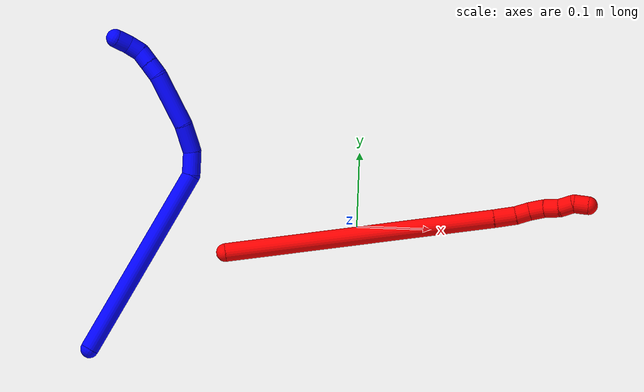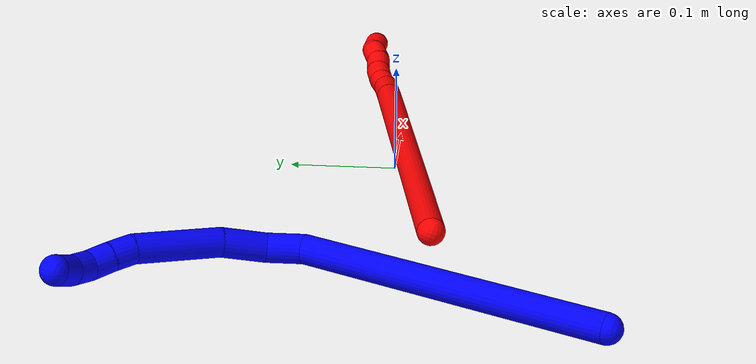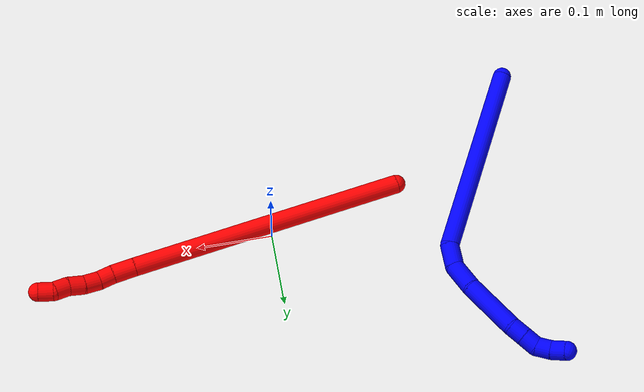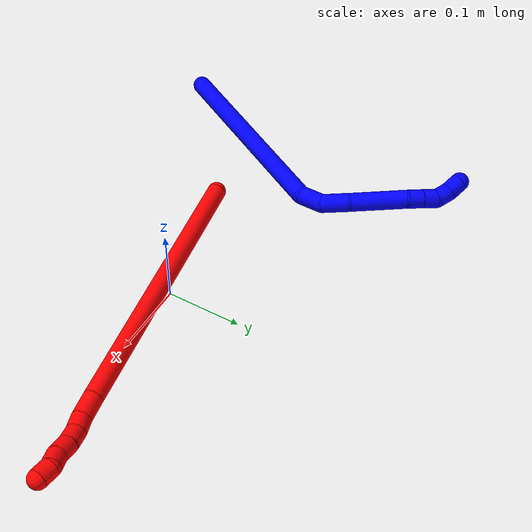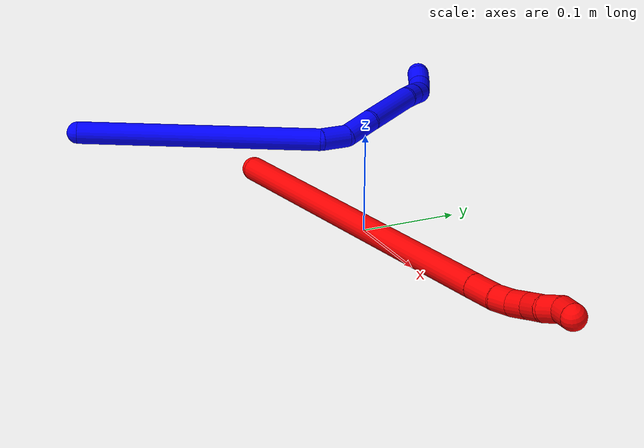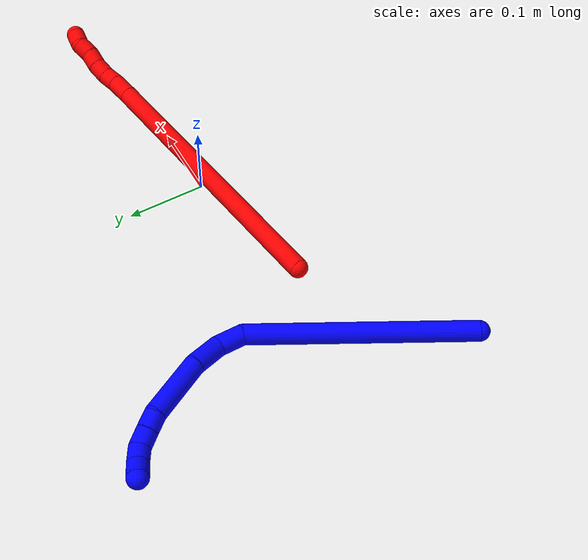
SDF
<sdf version="1.7">
 <world name="default">
  <plugin name="TubeGeneratorPlugin" filename="libtube_generator_plugin.so"/>
  <model name="photoneo_s_sensor">
   <static>1</static>
   <pose>0 0 2 1.57079 1.57079 3.14159</pose>
   <link name="link">
    <inertial><mass>0.1</mass></inertial>
    <sensor name="sensor" type="depth">
     <update_rate>30</update_rate>
     <camera>
      <horizontal_fov>1.22</horizontal_fov>
      <image><width>1920</width><height>1200</height><format>B8G8R8</format></image>
      <clip><near>0.1</near><far>4</far></clip>
      <depth_camera><output>points</output></depth_camera>
     </camera>
     <plugin name="camera_plugin" filename="libgazebo_ros_depth_camera.so">
      <baseline>0.2</baseline>
      <alwaysOn>1</alwaysOn>
      <updateRate>0.0</updateRate>
      <cameraName>camera_ir</cameraName>
      <imageTopicName>/camera/color/image_raw</imageTopicName>
      <cameraInfoTopicName>/camera/color/camera_info</cameraInfoTopicName>
      <depthImageTopicName>/camera/depth/image_raw</depthImageTopicName>
      <depthImageCameraInfoTopicName>/camera/depth/camera_info</depthImageCameraInfoTopicName>
      <pointCloudTopicName>/camera/depth/points</pointCloudTopicName>
      <frameName>fr_optical</frameName>
      <pointCloudCutoff>0.1</pointCloudCutoff>
      <pointCloudCutoffMax>2.0</pointCloudCutoffMax>
      <distortionK1>0</distortionK1>
      <distortionK2>0</distortionK2>
      <distortionK3>0</distortionK3>
      <distortionT1>0</distortionT1>
      <distortionT2>0</distortionT2>
      <CxPrime>0</CxPrime>
      <Cx>0</Cx>
      <Cy>0</Cy>
      <focalLength>0</focalLength>
      <hackBaseline>0</hackBaseline>
     </plugin>
    </sensor>
   </link>
  </model>
  <gravity>0 0 -9.8</gravity>
  <magnetic_field>6e-06 2.3e-05 -4.2e-05</magnetic_field>
  <atmosphere type="adiabatic"/>
  <physics name="default_physics" default="0" type="ode">
   <max_step_size>0.003</max_step_size>
   <real_time_factor>1</real_time_factor>
   <real_time_update_rate>1000</real_time_update_rate>
   <max_contacts>10000</max_contacts>
   <ode>
    <solver>
     <type>quick</type>
     <iters>100</iters>
     <sor>1.3</sor>
     <use_dynamic_moi_rescaling>0</use_dynamic_moi_rescaling>
    </solver>
    <constraints>
     <contact_max_correcting_vel>0</contact_max_correcting_vel>
     <contact_surface_layer>0.001</contact_surface_layer>
     <cfm>0</cfm>
     <erp>0.2</erp>
    </constraints>
   </ode>
  </physics>
  <scene><ambient>0.4 0.4 0.4 1</ambient><background>0.7 0.7 0.7 1</background><shadows>0</shadows></scene>
  <audio><device>default</device></audio>
  <spherical_coordinates>
   <surface_model>EARTH_WGS84</surface_model>
   <latitude_deg>0</latitude_deg>
   <longitude_deg>0</longitude_deg>
   <elevation>0</elevation>
   <heading_deg>0</heading_deg>
  </spherical_coordinates>
  <model name="bin">
   <static>1</static>
   <link name="bottom">
    <collision name="collision-bottom">
     <pose>0 0 -0.01 0 -0 0</pose>
     <geometry><box><size>0.8 0.6 0.02</size></box></geometry>
     <surface>
      <friction><ode><mu>100</mu><mu2>100</mu2></ode></friction>
      <contact><collide_bitmask>65535</collide_bitmask></contact>
     </surface>
    </collision>
   </link>
   <link name="west_wall">
    <collision name="collision-west_wall">
     <pose>-0.41 0 0.1 0 -0 0</pose>
     <geometry><box><size>0.02 0.6 0.2</size></box></geometry>
     <surface>
      <friction><ode><mu>100</mu><mu2>100</mu2></ode></friction>
      <contact><collide_bitmask>65535</collide_bitmask></contact>
     </surface>
    </collision>
   </link>
   <link name="east_wall">
    <collision name="collision-east_wall">
     <pose>0.41 0 0.1 0 -0 0</pose>
     <geometry><box><size>0.02 0.6 0.2</size></box></geometry>
     <surface>
      <friction><ode><mu>100</mu><mu2>100</mu2></ode></friction>
      <contact><collide_bitmask>65535</collide_bitmask></contact>
     </surface>
    </collision>
   </link>
   <link name="south_wall">
    <collision name="collision-south_wall">
     <pose>0 -0.31 0.1 0 -0 0</pose>
     <geometry><box><size>0.8 0.02 0.2</size></box></geometry>
     <surface>
      <friction><ode><mu>100</mu><mu2>100</mu2></ode></friction>
      <contact><collide_bitmask>65535</collide_bitmask></contact>
     </surface>
    </collision>
   </link>
   <link name="north_wall">
    <collision name="collision-north_wall">
     <pose>0 0.31 0.1 0 -0 0</pose>
     <geometry><box><size>0.8 0.02 0.2</size></box></geometry>
     <surface>
      <friction><ode><mu>100</mu><mu2>100</mu2></ode></friction>
      <contact><collide_bitmask>65535</collide_bitmask></contact>
     </surface>
    </collision>
   </link>
  </model>
  <model name="1">
   <static>0</static>
   <link name="1">
    <collision name="collision-cylinder-e_1_1_4">
     <pose>-0.000762 0.001797 0.136503 -0.013166 -0.005584 3.7e-05</pose>
     <geometry><cylinder><radius>0.0125</radius><length>0.273034</length></cylinder></geometry>
     <surface>
      <friction><ode><mu>1.16</mu><mu2>1.16</mu2><slip1>0</slip1><slip2>0</slip2></ode></friction>
      <contact><ode><kp>1e+06</kp><kd>1</kd><max_vel>0</max_vel><min_depth>0.001</min_depth></ode></contact>
     </surface>
    </collision>
    <visual name="visual-cylinder-e_1_1_4">
     <pose>-0.000762 0.001797 0.136503 -0.013166 -0.005584 3.7e-05</pose>
     <geometry><cylinder><radius>0.0125</radius><length>0.273034</length></cylinder></geometry>
     <material><ambient>0 0 1 1</ambient></material>
    </visual>
    <collision name="collision-cylinder-e_2_4_5">
     <pose>0.001505 0.010582 0.287188 -0.45778 0.189341 -0.044236</pose>
     <geometry><cylinder><radius>0.0125</radius><length>0.032195</length></cylinder></geometry>
     <surface>
      <friction><ode><mu>1.16</mu><mu2>1.16</mu2><slip1>0</slip1><slip2>0</slip2></ode></friction>
      <contact><ode><kp>1e+06</kp><kd>1</kd><max_vel>0</max_vel><min_depth>0.001</min_depth></ode></contact>
     </surface>
    </collision>
    <visual name="visual-cylinder-e_2_4_5">
     <pose>0.001505 0.010582 0.287188 -0.45778 0.189341 -0.044236</pose>
     <geometry><cylinder><radius>0.0125</radius><length>0.032195</length></cylinder></geometry>
     <material><ambient>0 0 1 1</ambient></material>
    </visual>
    <collision name="collision-cylinder-e_3_5_6">
     <pose>0.006194 0.032578 0.31391 -0.87477 0.084625 -0.039588</pose>
     <geometry><cylinder><radius>0.0125</radius><length>0.039257</length></cylinder></geometry>
     <surface>
      <friction><ode><mu>1.16</mu><mu2>1.16</mu2><slip1>0</slip1><slip2>0</slip2></ode></friction>
      <contact><ode><kp>1e+06</kp><kd>1</kd><max_vel>0</max_vel><min_depth>0.001</min_depth></ode></contact>
     </surface>
    </collision>
    <visual name="visual-cylinder-e_3_5_6">
     <pose>0.006194 0.032578 0.31391 -0.87477 0.084625 -0.039588</pose>
     <geometry><cylinder><radius>0.0125</radius><length>0.039257</length></cylinder></geometry>
     <material><ambient>0 0 1 1</ambient></material>
    </visual>
    <collision name="collision-cylinder-e_4_6_7">
     <pose>0.017549 0.077987 0.346231 -0.99396 0.26123 -0.142259</pose>
     <geometry><cylinder><radius>0.0125</radius><length>0.075086</length></cylinder></geometry>
     <surface>
      <friction><ode><mu>1.16</mu><mu2>1.16</mu2><slip1>0</slip1><slip2>0</slip2></ode></friction>
      <contact><ode><kp>1e+06</kp><kd>1</kd><max_vel>0</max_vel><min_depth>0.001</min_depth></ode></contact>
     </surface>
    </collision>
    <visual name="visual-cylinder-e_4_6_7">
     <pose>0.017549 0.077987 0.346231 -0.99396 0.26123 -0.142259</pose>
     <geometry><cylinder><radius>0.0125</radius><length>0.075086</length></cylinder></geometry>
     <material><ambient>0 0 1 1</ambient></material>
    </visual>
    <collision name="collision-cylinder-e_5_7_8">
     <pose>0.031946 0.116427 0.369861 -1.12413 0.485324 -0.309327</pose>
     <geometry><cylinder><radius>0.0125</radius><length>0.020154</length></cylinder></geometry>
     <surface>
      <friction><ode><mu>1.16</mu><mu2>1.16</mu2><slip1>0</slip1><slip2>0</slip2></ode></friction>
      <contact><ode><kp>1e+06</kp><kd>1</kd><max_vel>0</max_vel><min_depth>0.001</min_depth></ode></contact>
     </surface>
    </collision>
    <visual name="visual-cylinder-e_5_7_8">
     <pose>0.031946 0.116427 0.369861 -1.12413 0.485324 -0.309327</pose>
     <geometry><cylinder><radius>0.0125</radius><length>0.020154</length></cylinder></geometry>
     <material><ambient>0 0 1 1</ambient></material>
    </visual>
    <collision name="collision-cylinder-e_6_8_9">
     <pose>0.041808 0.132229 0.377431 -1.12395 0.54004 -0.345112</pose>
     <geometry><cylinder><radius>0.0125</radius><length>0.020074</length></cylinder></geometry>
     <surface>
      <friction><ode><mu>1.16</mu><mu2>1.16</mu2><slip1>0</slip1><slip2>0</slip2></ode></friction>
      <contact><ode><kp>1e+06</kp><kd>1</kd><max_vel>0</max_vel><min_depth>0.001</min_depth></ode></contact>
     </surface>
    </collision>
    <visual name="visual-cylinder-e_6_8_9">
     <pose>0.041808 0.132229 0.377431 -1.12395 0.54004 -0.345112</pose>
     <geometry><cylinder><radius>0.0125</radius><length>0.020074</length></cylinder></geometry>
     <material><ambient>0 0 1 1</ambient></material>
    </visual>
    <collision name="collision-cylinder-e_7_9_10">
     <pose>0.049588 0.149705 0.381243 -1.56133 0.263447 -0.260993</pose>
     <geometry><cylinder><radius>0.0125</radius><length>0.02012</length></cylinder></geometry>
     <surface>
      <friction><ode><mu>1.16</mu><mu2>1.16</mu2><slip1>0</slip1><slip2>0</slip2></ode></friction>
      <contact><ode><kp>1e+06</kp><kd>1</kd><max_vel>0</max_vel><min_depth>0.001</min_depth></ode></contact>
     </surface>
    </collision>
    <visual name="visual-cylinder-e_7_9_10">
     <pose>0.049588 0.149705 0.381243 -1.56133 0.263447 -0.260993</pose>
     <geometry><cylinder><radius>0.0125</radius><length>0.02012</length></cylinder></geometry>
     <material><ambient>0 0 1 1</ambient></material>
    </visual>
    <collision name="collision-cylinder-e_8_10_2">
     <pose>0.052646 0.169403 0.380382 -1.666 0.043624 -0.047986</pose>
     <geometry><cylinder><radius>0.0125</radius><length>0.02008</length></cylinder></geometry>
     <surface>
      <friction><ode><mu>1.16</mu><mu2>1.16</mu2><slip1>0</slip1><slip2>0</slip2></ode></friction>
      <contact><ode><kp>1e+06</kp><kd>1</kd><max_vel>0</max_vel><min_depth>0.001</min_depth></ode></contact>
     </surface>
    </collision>
    <visual name="visual-cylinder-e_8_10_2">
     <pose>0.052646 0.169403 0.380382 -1.666 0.043624 -0.047986</pose>
     <geometry><cylinder><radius>0.0125</radius><length>0.02008</length></cylinder></geometry>
     <material><ambient>0 0 1 1</ambient></material>
    </visual>
    <collision name="collision-sphere-2">
     <pose>0.053084 0.179388 0.379428 0 -0 0</pose>
     <geometry><sphere><radius>0.0125</radius></sphere></geometry>
     <surface>
      <friction><ode><mu>1.16</mu><mu2>1.16</mu2><slip1>0</slip1><slip2>0</slip2></ode></friction>
      <contact><ode><kp>1e+06</kp><kd>1</kd><max_vel>0</max_vel><min_depth>0.001</min_depth></ode></contact>
     </surface>
    </collision>
    <visual name="visual-sphere-2">
     <pose>0.053084 0.179388 0.379428 0 -0 0</pose>
     <geometry><sphere><radius>0.0125</radius></sphere></geometry>
     <material><ambient>0 0 1 1</ambient></material>
    </visual>
    <collision name="collision-sphere-10">
     <pose>0.052208 0.159418 0.381335 0 -0 0</pose>
     <geometry><sphere><radius>0.0125</radius></sphere></geometry>
     <surface>
      <friction><ode><mu>1.16</mu><mu2>1.16</mu2><slip1>0</slip1><slip2>0</slip2></ode></friction>
      <contact><ode><kp>1e+06</kp><kd>1</kd><max_vel>0</max_vel><min_depth>0.001</min_depth></ode></contact>
     </surface>
    </collision>
    <visual name="visual-sphere-10">
     <pose>0.052208 0.159418 0.381335 0 -0 0</pose>
     <geometry><sphere><radius>0.0125</radius></sphere></geometry>
     <material><ambient>0 0 1 1</ambient></material>
    </visual>
    <collision name="collision-sphere-9">
     <pose>0.046969 0.139993 0.381151 0 -0 0</pose>
     <geometry><sphere><radius>0.0125</radius></sphere></geometry>
     <surface>
      <friction><ode><mu>1.16</mu><mu2>1.16</mu2><slip1>0</slip1><slip2>0</slip2></ode></friction>
      <contact><ode><kp>1e+06</kp><kd>1</kd><max_vel>0</max_vel><min_depth>0.001</min_depth></ode></contact>
     </surface>
    </collision>
    <visual name="visual-sphere-9">
     <pose>0.046969 0.139993 0.381151 0 -0 0</pose>
     <geometry><sphere><radius>0.0125</radius></sphere></geometry>
     <material><ambient>0 0 1 1</ambient></material>
    </visual>
    <collision name="collision-sphere-4">
     <pose>-0.001525 0.003595 0.273006 0 -0 0</pose>
     <geometry><sphere><radius>0.0125</radius></sphere></geometry>
     <surface>
      <friction><ode><mu>1.16</mu><mu2>1.16</mu2><slip1>0</slip1><slip2>0</slip2></ode></friction>
      <contact><ode><kp>1e+06</kp><kd>1</kd><max_vel>0</max_vel><min_depth>0.001</min_depth></ode></contact>
     </surface>
    </collision>
    <visual name="visual-sphere-4">
     <pose>-0.001525 0.003595 0.273006 0 -0 0</pose>
     <geometry><sphere><radius>0.0125</radius></sphere></geometry>
     <material><ambient>0 0 1 1</ambient></material>
    </visual>
    <collision name="collision-sphere-1">
     <geometry><sphere><radius>0.0125</radius></sphere></geometry>
     <surface>
      <friction><ode><mu>1.16</mu><mu2>1.16</mu2><slip1>0</slip1><slip2>0</slip2></ode></friction>
      <contact><ode><kp>1e+06</kp><kd>1</kd><max_vel>0</max_vel><min_depth>0.001</min_depth></ode></contact>
     </surface>
    </collision>
    <visual name="visual-sphere-1">
     <geometry><sphere><radius>0.0125</radius></sphere></geometry>
     <material><ambient>0 0 1 1</ambient></material>
    </visual>
    <collision name="collision-sphere-8">
     <pose>0.036647 0.124466 0.373711 0 -0 0</pose>
     <geometry><sphere><radius>0.0125</radius></sphere></geometry>
     <surface>
      <friction><ode><mu>1.16</mu><mu2>1.16</mu2><slip1>0</slip1><slip2>0</slip2></ode></friction>
      <contact><ode><kp>1e+06</kp><kd>1</kd><max_vel>0</max_vel><min_depth>0.001</min_depth></ode></contact>
     </surface>
    </collision>
    <visual name="visual-sphere-8">
     <pose>0.036647 0.124466 0.373711 0 -0 0</pose>
     <geometry><sphere><radius>0.0125</radius></sphere></geometry>
     <material><ambient>0 0 1 1</ambient></material>
    </visual>
    <collision name="collision-sphere-5">
     <pose>0.004535 0.017569 0.30137 0 -0 0</pose>
     <geometry><sphere><radius>0.0125</radius></sphere></geometry>
     <surface>
      <friction><ode><mu>1.16</mu><mu2>1.16</mu2><slip1>0</slip1><slip2>0</slip2></ode></friction>
      <contact><ode><kp>1e+06</kp><kd>1</kd><max_vel>0</max_vel><min_depth>0.001</min_depth></ode></contact>
     </surface>
    </collision>
    <visual name="visual-sphere-5">
     <pose>0.004535 0.017569 0.30137 0 -0 0</pose>
     <geometry><sphere><radius>0.0125</radius></sphere></geometry>
     <material><ambient>0 0 1 1</ambient></material>
    </visual>
    <collision name="collision-sphere-6">
     <pose>0.007853 0.047587 0.32645 0 -0 0</pose>
     <geometry><sphere><radius>0.0125</radius></sphere></geometry>
     <surface>
      <friction><ode><mu>1.16</mu><mu2>1.16</mu2><slip1>0</slip1><slip2>0</slip2></ode></friction>
      <contact><ode><kp>1e+06</kp><kd>1</kd><max_vel>0</max_vel><min_depth>0.001</min_depth></ode></contact>
     </surface>
    </collision>
    <visual name="visual-sphere-6">
     <pose>0.007853 0.047587 0.32645 0 -0 0</pose>
     <geometry><sphere><radius>0.0125</radius></sphere></geometry>
     <material><ambient>0 0 1 1</ambient></material>
    </visual>
    <collision name="collision-sphere-7">
     <pose>0.027245 0.108388 0.366011 0 -0 0</pose>
     <geometry><sphere><radius>0.0125</radius></sphere></geometry>
     <surface>
      <friction><ode><mu>1.16</mu><mu2>1.16</mu2><slip1>0</slip1><slip2>0</slip2></ode></friction>
      <contact><ode><kp>1e+06</kp><kd>1</kd><max_vel>0</max_vel><min_depth>0.001</min_depth></ode></contact>
     </surface>
    </collision>
    <visual name="visual-sphere-7">
     <pose>0.027245 0.108388 0.366011 0 -0 0</pose>
     <geometry><sphere><radius>0.0125</radius></sphere></geometry>
     <material><ambient>0 0 1 1</ambient></material>
    </visual>
    <inertial>
     <pose>0.009878 0.038761 0.230351 0 -0 0</pose>
     <mass>0.5</mass>
     <inertia>
      <ixx>0.001756</ixx>
      <ixy>0</ixy>
      <ixz>0</ixz>
      <iyy>0.001745</iyy>
      <iyz>0</iyz>
      <izz>-3.9e-05</izz>
     </inertia>
    </inertial>
   </link>
   <pose>-0.35601 -0.180372 0.015256 1.61901 1.13851 2.68686</pose>
  </model>
  <model name="2">
   <static>0</static>
   <link name="2">
    <collision name="collision-cylinder-e_1_1_4">
     <pose>0.178653 0.026945 -0.033172 -2.45941 1.33599 -2.29606</pose>
     <geometry><cylinder><radius>0.0125</radius><length>0.367386</length></cylinder></geometry>
     <surface>
      <friction><ode><mu>1.16</mu><mu2>1.16</mu2><slip1>0</slip1><slip2>0</slip2></ode></friction>
      <contact><ode><kp>1e+06</kp><kd>1</kd><max_vel>0</max_vel><min_depth>0.001</min_depth></ode></contact>
     </surface>
    </collision>
    <visual name="visual-cylinder-e_1_1_4">
     <pose>0.178653 0.026945 -0.033172 -2.45941 1.33599 -2.29606</pose>
     <geometry><cylinder><radius>0.0125</radius><length>0.367386</length></cylinder></geometry>
     <material><ambient>1 0 0 1</ambient></material>
    </visual>
    <collision name="collision-cylinder-e_2_4_5">
     <pose>0.372036 0.055882 -0.068883 -2.47646 1.35519 -2.3307</pose>
     <geometry><cylinder><radius>0.0125</radius><length>0.030161</length></cylinder></geometry>
     <surface>
      <friction><ode><mu>1.16</mu><mu2>1.16</mu2><slip1>0</slip1><slip2>0</slip2></ode></friction>
      <contact><ode><kp>1e+06</kp><kd>1</kd><max_vel>0</max_vel><min_depth>0.001</min_depth></ode></contact>
     </surface>
    </collision>
    <visual name="visual-cylinder-e_2_4_5">
     <pose>0.372036 0.055882 -0.068883 -2.47646 1.35519 -2.3307</pose>
     <geometry><cylinder><radius>0.0125</radius><length>0.030161</length></cylinder></geometry>
     <material><ambient>1 0 0 1</ambient></material>
    </visual>
    <collision name="collision-cylinder-e_3_5_6">
     <pose>0.396677 0.057602 -0.073174 2.9882 1.39372 2.95846</pose>
     <geometry><cylinder><radius>0.0125</radius><length>0.020133</length></cylinder></geometry>
     <surface>
      <friction><ode><mu>1.16</mu><mu2>1.16</mu2><slip1>0</slip1><slip2>0</slip2></ode></friction>
      <contact><ode><kp>1e+06</kp><kd>1</kd><max_vel>0</max_vel><min_depth>0.001</min_depth></ode></contact>
     </surface>
    </collision>
    <visual name="visual-cylinder-e_3_5_6">
     <pose>0.396677 0.057602 -0.073174 2.9882 1.39372 2.95846</pose>
     <geometry><cylinder><radius>0.0125</radius><length>0.020133</length></cylinder></geometry>
     <material><ambient>1 0 0 1</ambient></material>
    </visual>
    <collision name="collision-cylinder-e_4_6_7">
     <pose>0.416379 0.057219 -0.078627 3.11134 1.20945 3.09783</pose>
     <geometry><cylinder><radius>0.0125</radius><length>0.020939</length></cylinder></geometry>
     <surface>
      <friction><ode><mu>1.16</mu><mu2>1.16</mu2><slip1>0</slip1><slip2>0</slip2></ode></friction>
      <contact><ode><kp>1e+06</kp><kd>1</kd><max_vel>0</max_vel><min_depth>0.001</min_depth></ode></contact>
     </surface>
    </collision>
    <visual name="visual-cylinder-e_4_6_7">
     <pose>0.416379 0.057219 -0.078627 3.11134 1.20945 3.09783</pose>
     <geometry><cylinder><radius>0.0125</radius><length>0.020939</length></cylinder></geometry>
     <material><ambient>1 0 0 1</ambient></material>
    </visual>
    <collision name="collision-cylinder-e_5_7_8">
     <pose>0.43553 0.058335 -0.087193 -2.89435 1.07843 -2.7321</pose>
     <geometry><cylinder><radius>0.0125</radius><length>0.021237</length></cylinder></geometry>
     <surface>
      <friction><ode><mu>1.16</mu><mu2>1.16</mu2><slip1>0</slip1><slip2>0</slip2></ode></friction>
      <contact><ode><kp>1e+06</kp><kd>1</kd><max_vel>0</max_vel><min_depth>0.001</min_depth></ode></contact>
     </surface>
    </collision>
    <visual name="visual-cylinder-e_5_7_8">
     <pose>0.43553 0.058335 -0.087193 -2.89435 1.07843 -2.7321</pose>
     <geometry><cylinder><radius>0.0125</radius><length>0.021237</length></cylinder></geometry>
     <material><ambient>1 0 0 1</ambient></material>
    </visual>
    <collision name="collision-cylinder-e_6_8_9">
     <pose>0.454169 0.058203 -0.095708 2.78457 1.17365 2.61167</pose>
     <geometry><cylinder><radius>0.0125</radius><length>0.020131</length></cylinder></geometry>
     <surface>
      <friction><ode><mu>1.16</mu><mu2>1.16</mu2><slip1>0</slip1><slip2>0</slip2></ode></friction>
      <contact><ode><kp>1e+06</kp><kd>1</kd><max_vel>0</max_vel><min_depth>0.001</min_depth></ode></contact>
     </surface>
    </collision>
    <visual name="visual-cylinder-e_6_8_9">
     <pose>0.454169 0.058203 -0.095708 2.78457 1.17365 2.61167</pose>
     <geometry><cylinder><radius>0.0125</radius><length>0.020131</length></cylinder></geometry>
     <material><ambient>1 0 0 1</ambient></material>
    </visual>
    <collision name="collision-cylinder-e_7_9_2">
     <pose>0.472192 0.060209 -0.102874 -2.37833 1.06253 -1.94323</pose>
     <geometry><cylinder><radius>0.0125</radius><length>0.020013</length></cylinder></geometry>
     <surface>
      <friction><ode><mu>1.16</mu><mu2>1.16</mu2><slip1>0</slip1><slip2>0</slip2></ode></friction>
      <contact><ode><kp>1e+06</kp><kd>1</kd><max_vel>0</max_vel><min_depth>0.001</min_depth></ode></contact>
     </surface>
    </collision>
    <visual name="visual-cylinder-e_7_9_2">
     <pose>0.472192 0.060209 -0.102874 -2.37833 1.06253 -1.94323</pose>
     <geometry><cylinder><radius>0.0125</radius><length>0.020013</length></cylinder></geometry>
     <material><ambient>1 0 0 1</ambient></material>
    </visual>
    <collision name="collision-sphere-2">
     <pose>0.480934 0.063575 -0.106393 0 -0 0</pose>
     <geometry><sphere><radius>0.0125</radius></sphere></geometry>
     <surface>
      <friction><ode><mu>1.16</mu><mu2>1.16</mu2><slip1>0</slip1><slip2>0</slip2></ode></friction>
      <contact><ode><kp>1e+06</kp><kd>1</kd><max_vel>0</max_vel><min_depth>0.001</min_depth></ode></contact>
     </surface>
    </collision>
    <visual name="visual-sphere-2">
     <pose>0.480934 0.063575 -0.106393 0 -0 0</pose>
     <geometry><sphere><radius>0.0125</radius></sphere></geometry>
     <material><ambient>1 0 0 1</ambient></material>
    </visual>
    <collision name="collision-sphere-9">
     <pose>0.463451 0.056843 -0.099355 0 -0 0</pose>
     <geometry><sphere><radius>0.0125</radius></sphere></geometry>
     <surface>
      <friction><ode><mu>1.16</mu><mu2>1.16</mu2><slip1>0</slip1><slip2>0</slip2></ode></friction>
      <contact><ode><kp>1e+06</kp><kd>1</kd><max_vel>0</max_vel><min_depth>0.001</min_depth></ode></contact>
     </surface>
    </collision>
    <visual name="visual-sphere-9">
     <pose>0.463451 0.056843 -0.099355 0 -0 0</pose>
     <geometry><sphere><radius>0.0125</radius></sphere></geometry>
     <material><ambient>1 0 0 1</ambient></material>
    </visual>
    <collision name="collision-sphere-4">
     <pose>0.357305 0.05389 -0.066345 0 -0 0</pose>
     <geometry><sphere><radius>0.0125</radius></sphere></geometry>
     <surface>
      <friction><ode><mu>1.16</mu><mu2>1.16</mu2><slip1>0</slip1><slip2>0</slip2></ode></friction>
      <contact><ode><kp>1e+06</kp><kd>1</kd><max_vel>0</max_vel><min_depth>0.001</min_depth></ode></contact>
     </surface>
    </collision>
    <visual name="visual-sphere-4">
     <pose>0.357305 0.05389 -0.066345 0 -0 0</pose>
     <geometry><sphere><radius>0.0125</radius></sphere></geometry>
     <material><ambient>1 0 0 1</ambient></material>
    </visual>
    <collision name="collision-sphere-1">
     <geometry><sphere><radius>0.0125</radius></sphere></geometry>
     <surface>
      <friction><ode><mu>1.16</mu><mu2>1.16</mu2><slip1>0</slip1><slip2>0</slip2></ode></friction>
      <contact><ode><kp>1e+06</kp><kd>1</kd><max_vel>0</max_vel><min_depth>0.001</min_depth></ode></contact>
     </surface>
    </collision>
    <visual name="visual-sphere-1">
     <geometry><sphere><radius>0.0125</radius></sphere></geometry>
     <material><ambient>1 0 0 1</ambient></material>
    </visual>
    <collision name="collision-sphere-8">
     <pose>0.444887 0.059564 -0.09206 0 -0 0</pose>
     <geometry><sphere><radius>0.0125</radius></sphere></geometry>
     <surface>
      <friction><ode><mu>1.16</mu><mu2>1.16</mu2><slip1>0</slip1><slip2>0</slip2></ode></friction>
      <contact><ode><kp>1e+06</kp><kd>1</kd><max_vel>0</max_vel><min_depth>0.001</min_depth></ode></contact>
     </surface>
    </collision>
    <visual name="visual-sphere-8">
     <pose>0.444887 0.059564 -0.09206 0 -0 0</pose>
     <geometry><sphere><radius>0.0125</radius></sphere></geometry>
     <material><ambient>1 0 0 1</ambient></material>
    </visual>
    <collision name="collision-sphere-5">
     <pose>0.386767 0.057873 -0.071422 0 -0 0</pose>
     <geometry><sphere><radius>0.0125</radius></sphere></geometry>
     <surface>
      <friction><ode><mu>1.16</mu><mu2>1.16</mu2><slip1>0</slip1><slip2>0</slip2></ode></friction>
      <contact><ode><kp>1e+06</kp><kd>1</kd><max_vel>0</max_vel><min_depth>0.001</min_depth></ode></contact>
     </surface>
    </collision>
    <visual name="visual-sphere-5">
     <pose>0.386767 0.057873 -0.071422 0 -0 0</pose>
     <geometry><sphere><radius>0.0125</radius></sphere></geometry>
     <material><ambient>1 0 0 1</ambient></material>
    </visual>
    <collision name="collision-sphere-6">
     <pose>0.406586 0.057331 -0.074927 0 -0 0</pose>
     <geometry><sphere><radius>0.0125</radius></sphere></geometry>
     <surface>
      <friction><ode><mu>1.16</mu><mu2>1.16</mu2><slip1>0</slip1><slip2>0</slip2></ode></friction>
      <contact><ode><kp>1e+06</kp><kd>1</kd><max_vel>0</max_vel><min_depth>0.001</min_depth></ode></contact>
     </surface>
    </collision>
    <visual name="visual-sphere-6">
     <pose>0.406586 0.057331 -0.074927 0 -0 0</pose>
     <geometry><sphere><radius>0.0125</radius></sphere></geometry>
     <material><ambient>1 0 0 1</ambient></material>
    </visual>
    <collision name="collision-sphere-7">
     <pose>0.426173 0.057107 -0.082326 0 -0 0</pose>
     <geometry><sphere><radius>0.0125</radius></sphere></geometry>
     <surface>
      <friction><ode><mu>1.16</mu><mu2>1.16</mu2><slip1>0</slip1><slip2>0</slip2></ode></friction>
      <contact><ode><kp>1e+06</kp><kd>1</kd><max_vel>0</max_vel><min_depth>0.001</min_depth></ode></contact>
     </surface>
    </collision>
    <visual name="visual-sphere-7">
     <pose>0.426173 0.057107 -0.082326 0 -0 0</pose>
     <geometry><sphere><radius>0.0125</radius></sphere></geometry>
     <material><ambient>1 0 0 1</ambient></material>
    </visual>
    <inertial>
     <pose>0.242805 0.035116 -0.046443 0 -0 0</pose>
     <mass>0.5</mass>
     <inertia>
      <ixx>-0.001328</ixx>
      <ixy>0</ixy>
      <ixz>0</ixz>
      <iyy>0.00333</iyy>
      <iyz>0</iyz>
      <izz>-0.004661</izz>
     </inertia>
    </inertial>
   </link>
   <pose>-0.177144 -0.042238 0.011545 -2.72427 0.106879 0.374308</pose>
  </model>
 </world>
</sdf>
